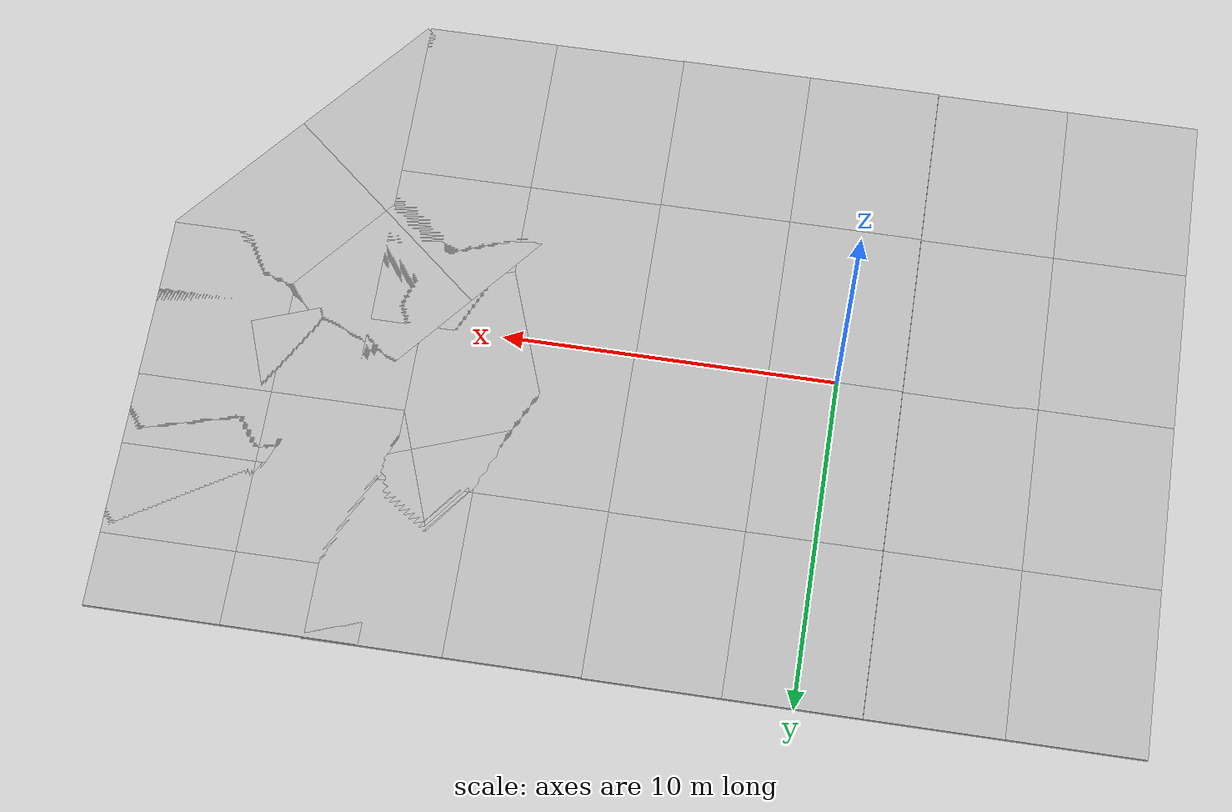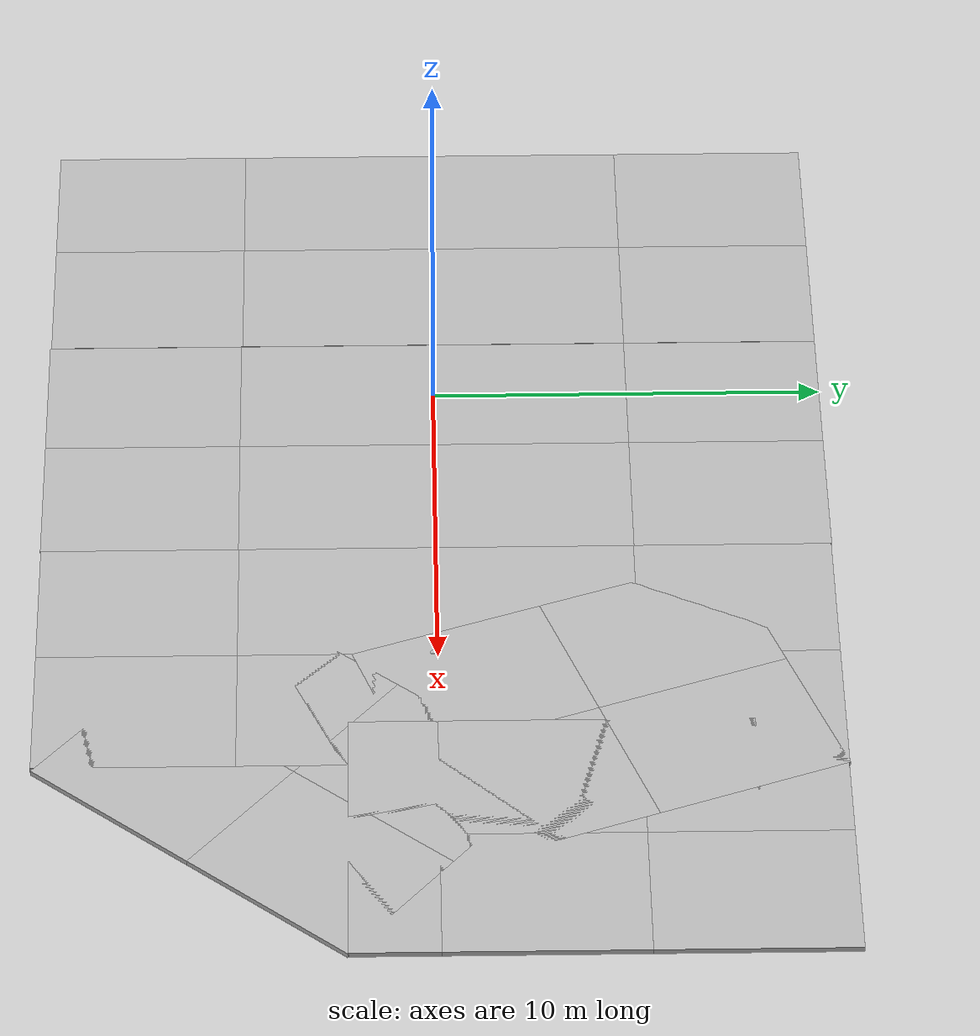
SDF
<sdf version="1.7">
 <world name="default">
  <light name="sun" type="directional">
   <pose>0 0 10 0 -0 0</pose>
   <diffuse>0.8 0.8 0.8 1</diffuse>
   <specular>0.2 0.2 0.2 1</specular>
   <attenuation>
    <range>1000</range>
    <constant>0.9</constant>
    <linear>0.01</linear>
    <quadratic>0.001</quadratic>
   </attenuation>
   <direction>-0.5 0.1 -0.9</direction>
   <spot><inner_angle>0</inner_angle><outer_angle>0</outer_angle><falloff>0</falloff></spot>
  </light>
  <model name="ground_plane">
   <static>1</static>
   <link name="link">
    <collision name="collision">
     <geometry><plane><normal>0 0 1</normal><size>100 100</size></plane></geometry>
     <surface>
      <contact><collide_bitmask>65535</collide_bitmask></contact>
      <friction><ode><mu>100</mu><mu2>50</mu2></ode></friction>
     </surface>
    </collision>
    <visual name="visual">
     <cast_shadows>0</cast_shadows>
     <geometry><plane><normal>0 0 1</normal><size>100 100</size></plane></geometry>
     <material>
      <script><uri>file://media/materials/scripts/gazebo.material</uri><name>Gazebo/Grey</name></script>
     </material>
    </visual>
   </link>
  </model>
  <gravity>0 0 -9.8</gravity>
  <magnetic_field>6e-06 2.3e-05 -4.2e-05</magnetic_field>
  <atmosphere type="adiabatic"/>
  <physics type="ode">
   <max_step_size>0.001</max_step_size>
   <real_time_factor>1</real_time_factor>
   <real_time_update_rate>1000</real_time_update_rate>
  </physics>
  <scene><ambient>0.4 0.4 0.4 1</ambient><background>0.7 0.7 0.7 1</background><shadows>1</shadows></scene>
  <spherical_coordinates>
   <surface_model>EARTH_WGS84</surface_model>
   <latitude_deg>0</latitude_deg>
   <longitude_deg>0</longitude_deg>
   <elevation>0</elevation>
   <heading_deg>0</heading_deg>
  </spherical_coordinates>
  <model name="mud_box">
   <static>1</static>
   <link name="link">
    <collision name="collision"><geometry><box><size>8 10 0.2</size></box></geometry></collision>
    <visual name="visual_1">
     <pose>-2 2.5 0 0 -0 0</pose>
     <cast_shadows>0</cast_shadows>
     <geometry><box><size>4 5 0.2</size></box></geometry>
     <material>
      <script>
       <uri>model://mud_box/materials/scripts</uri>
       <uri>model://mud_box/materials/textures</uri>
       <name>vrc/mud</name>
      </script>
     </material>
    </visual>
    <visual name="visual_2">
     <pose>2 2.5 0 0 -0 0</pose>
     <cast_shadows>0</cast_shadows>
     <geometry><box><size>4 5 0.2</size></box></geometry>
     <material>
      <script>
       <uri>model://mud_box/materials/scripts</uri>
       <uri>model://mud_box/materials/textures</uri>
       <name>vrc/mud</name>
      </script>
     </material>
    </visual>
    <visual name="visual_3">
     <pose>2 -2.5 0 0 -0 0</pose>
     <cast_shadows>0</cast_shadows>
     <geometry><box><size>4 5 0.2</size></box></geometry>
     <material>
      <script>
       <uri>model://mud_box/materials/scripts</uri>
       <uri>model://mud_box/materials/textures</uri>
       <name>vrc/mud</name>
      </script>
     </material>
    </visual>
    <visual name="visual_4">
     <pose>-2 -2.5 0 0 -0 0</pose>
     <cast_shadows>0</cast_shadows>
     <geometry><box><size>4 5 0.2</size></box></geometry>
     <material>
      <script>
       <uri>model://mud_box/materials/scripts</uri>
       <uri>model://mud_box/materials/textures</uri>
       <name>vrc/mud</name>
      </script>
     </material>
    </visual>
   </link>
   <pose>-5.95944 4.99725 0 0 -0 0</pose>
  </model>
  <model name="mud_box_0">
   <static>1</static>
   <link name="link">
    <collision name="collision"><geometry><box><size>8 10 0.2</size></box></geometry></collision>
    <visual name="visual_1">
     <pose>-2 2.5 0 0 -0 0</pose>
     <cast_shadows>0</cast_shadows>
     <geometry><box><size>4 5 0.2</size></box></geometry>
     <material>
      <script>
       <uri>model://mud_box/materials/scripts</uri>
       <uri>model://mud_box/materials/textures</uri>
       <name>vrc/mud</name>
      </script>
     </material>
    </visual>
    <visual name="visual_2">
     <pose>2 2.5 0 0 -0 0</pose>
     <cast_shadows>0</cast_shadows>
     <geometry><box><size>4 5 0.2</size></box></geometry>
     <material>
      <script>
       <uri>model://mud_box/materials/scripts</uri>
       <uri>model://mud_box/materials/textures</uri>
       <name>vrc/mud</name>
      </script>
     </material>
    </visual>
    <visual name="visual_3">
     <pose>2 -2.5 0 0 -0 0</pose>
     <cast_shadows>0</cast_shadows>
     <geometry><box><size>4 5 0.2</size></box></geometry>
     <material>
      <script>
       <uri>model://mud_box/materials/scripts</uri>
       <uri>model://mud_box/materials/textures</uri>
       <name>vrc/mud</name>
      </script>
     </material>
    </visual>
    <visual name="visual_4">
     <pose>-2 -2.5 0 0 -0 0</pose>
     <cast_shadows>0</cast_shadows>
     <geometry><box><size>4 5 0.2</size></box></geometry>
     <material>
      <script>
       <uri>model://mud_box/materials/scripts</uri>
       <uri>model://mud_box/materials/textures</uri>
       <name>vrc/mud</name>
      </script>
     </material>
    </visual>
   </link>
   <pose>-5.95945 -4.9662 0 0 -0 0</pose>
  </model>
  <model name="mud_box_1">
   <static>1</static>
   <link name="link">
    <collision name="collision"><geometry><box><size>8 10 0.2</size></box></geometry></collision>
    <visual name="visual_1">
     <pose>-2 2.5 0 0 -0 0</pose>
     <cast_shadows>0</cast_shadows>
     <geometry><box><size>4 5 0.2</size></box></geometry>
     <material>
      <script>
       <uri>model://mud_box/materials/scripts</uri>
       <uri>model://mud_box/materials/textures</uri>
       <name>vrc/mud</name>
      </script>
     </material>
    </visual>
    <visual name="visual_2">
     <pose>2 2.5 0 0 -0 0</pose>
     <cast_shadows>0</cast_shadows>
     <geometry><box><size>4 5 0.2</size></box></geometry>
     <material>
      <script>
       <uri>model://mud_box/materials/scripts</uri>
       <uri>model://mud_box/materials/textures</uri>
       <name>vrc/mud</name>
      </script>
     </material>
    </visual>
    <visual name="visual_3">
     <pose>2 -2.5 0 0 -0 0</pose>
     <cast_shadows>0</cast_shadows>
     <geometry><box><size>4 5 0.2</size></box></geometry>
     <material>
      <script>
       <uri>model://mud_box/materials/scripts</uri>
       <uri>model://mud_box/materials/textures</uri>
       <name>vrc/mud</name>
      </script>
     </material>
    </visual>
    <visual name="visual_4">
     <pose>-2 -2.5 0 0 -0 0</pose>
     <cast_shadows>0</cast_shadows>
     <geometry><box><size>4 5 0.2</size></box></geometry>
     <material>
      <script>
       <uri>model://mud_box/materials/scripts</uri>
       <uri>model://mud_box/materials/textures</uri>
       <name>vrc/mud</name>
      </script>
     </material>
    </visual>
   </link>
   <pose>2.04856 4.99724 0 0 -0 0</pose>
  </model>
  <model name="mud_box_2">
   <static>1</static>
   <link name="link">
    <collision name="collision"><geometry><box><size>8 10 0.2</size></box></geometry></collision>
    <visual name="visual_1">
     <pose>-2 2.5 0 0 -0 0</pose>
     <cast_shadows>0</cast_shadows>
     <geometry><box><size>4 5 0.2</size></box></geometry>
     <material>
      <script>
       <uri>model://mud_box/materials/scripts</uri>
       <uri>model://mud_box/materials/textures</uri>
       <name>vrc/mud</name>
      </script>
     </material>
    </visual>
    <visual name="visual_2">
     <pose>2 2.5 0 0 -0 0</pose>
     <cast_shadows>0</cast_shadows>
     <geometry><box><size>4 5 0.2</size></box></geometry>
     <material>
      <script>
       <uri>model://mud_box/materials/scripts</uri>
       <uri>model://mud_box/materials/textures</uri>
       <name>vrc/mud</name>
      </script>
     </material>
    </visual>
    <visual name="visual_3">
     <pose>2 -2.5 0 0 -0 0</pose>
     <cast_shadows>0</cast_shadows>
     <geometry><box><size>4 5 0.2</size></box></geometry>
     <material>
      <script>
       <uri>model://mud_box/materials/scripts</uri>
       <uri>model://mud_box/materials/textures</uri>
       <name>vrc/mud</name>
      </script>
     </material>
    </visual>
    <visual name="visual_4">
     <pose>-2 -2.5 0 0 -0 0</pose>
     <cast_shadows>0</cast_shadows>
     <geometry><box><size>4 5 0.2</size></box></geometry>
     <material>
      <script>
       <uri>model://mud_box/materials/scripts</uri>
       <uri>model://mud_box/materials/textures</uri>
       <name>vrc/mud</name>
      </script>
     </material>
    </visual>
   </link>
   <pose>2.04856 -4.99724 0 0 -0 0</pose>
  </model>
  <model name="mud_box_3">
   <static>1</static>
   <link name="link">
    <collision name="collision"><geometry><box><size>8 10 0.2</size></box></geometry></collision>
    <visual name="visual_1">
     <pose>-2 2.5 0 0 -0 0</pose>
     <cast_shadows>0</cast_shadows>
     <geometry><box><size>4 5 0.2</size></box></geometry>
     <material>
      <script>
       <uri>model://mud_box/materials/scripts</uri>
       <uri>model://mud_box/materials/textures</uri>
       <name>vrc/mud</name>
      </script>
     </material>
    </visual>
    <visual name="visual_2">
     <pose>2 2.5 0 0 -0 0</pose>
     <cast_shadows>0</cast_shadows>
     <geometry><box><size>4 5 0.2</size></box></geometry>
     <material>
      <script>
       <uri>model://mud_box/materials/scripts</uri>
       <uri>model://mud_box/materials/textures</uri>
       <name>vrc/mud</name>
      </script>
     </material>
    </visual>
    <visual name="visual_3">
     <pose>2 -2.5 0 0 -0 0</pose>
     <cast_shadows>0</cast_shadows>
     <geometry><box><size>4 5 0.2</size></box></geometry>
     <material>
      <script>
       <uri>model://mud_box/materials/scripts</uri>
       <uri>model://mud_box/materials/textures</uri>
       <name>vrc/mud</name>
      </script>
     </material>
    </visual>
    <visual name="visual_4">
     <pose>-2 -2.5 0 0 -0 0</pose>
     <cast_shadows>0</cast_shadows>
     <geometry><box><size>4 5 0.2</size></box></geometry>
     <material>
      <script>
       <uri>model://mud_box/materials/scripts</uri>
       <uri>model://mud_box/materials/textures</uri>
       <name>vrc/mud</name>
      </script>
     </material>
    </visual>
   </link>
   <pose>10.0428 4.98105 0 0 -0 0</pose>
  </model>
  <model name="mud_box_4">
   <static>1</static>
   <link name="link">
    <collision name="collision"><geometry><box><size>8 10 0.2</size></box></geometry></collision>
    <visual name="visual_1">
     <pose>-2 2.5 0 0 -0 0</pose>
     <cast_shadows>0</cast_shadows>
     <geometry><box><size>4 5 0.2</size></box></geometry>
     <material>
      <script>
       <uri>model://mud_box/materials/scripts</uri>
       <uri>model://mud_box/materials/textures</uri>
       <name>vrc/mud</name>
      </script>
     </material>
    </visual>
    <visual name="visual_2">
     <pose>2 2.5 0 0 -0 0</pose>
     <cast_shadows>0</cast_shadows>
     <geometry><box><size>4 5 0.2</size></box></geometry>
     <material>
      <script>
       <uri>model://mud_box/materials/scripts</uri>
       <uri>model://mud_box/materials/textures</uri>
       <name>vrc/mud</name>
      </script>
     </material>
    </visual>
    <visual name="visual_3">
     <pose>2 -2.5 0 0 -0 0</pose>
     <cast_shadows>0</cast_shadows>
     <geometry><box><size>4 5 0.2</size></box></geometry>
     <material>
      <script>
       <uri>model://mud_box/materials/scripts</uri>
       <uri>model://mud_box/materials/textures</uri>
       <name>vrc/mud</name>
      </script>
     </material>
    </visual>
    <visual name="visual_4">
     <pose>-2 -2.5 0 0 -0 0</pose>
     <cast_shadows>0</cast_shadows>
     <geometry><box><size>4 5 0.2</size></box></geometry>
     <material>
      <script>
       <uri>model://mud_box/materials/scripts</uri>
       <uri>model://mud_box/materials/textures</uri>
       <name>vrc/mud</name>
      </script>
     </material>
    </visual>
   </link>
   <pose>10.011 -4.9824 0 0 -0 0</pose>
  </model>
  <model name="mud_box_5_clone_0">
   <static>1</static>
   <link name="link">
    <collision name="collision"><geometry><box><size>8 10 0.2</size></box></geometry></collision>
    <visual name="visual_1">
     <pose>-2 2.5 0 0 -0 0</pose>
     <cast_shadows>0</cast_shadows>
     <geometry><box><size>4 5 0.2</size></box></geometry>
     <material>
      <script>
       <uri>model://mud_box/materials/scripts</uri>
       <uri>model://mud_box/materials/textures</uri>
       <name>vrc/mud</name>
      </script>
     </material>
    </visual>
    <visual name="visual_2">
     <pose>2 2.5 0 0 -0 0</pose>
     <cast_shadows>0</cast_shadows>
     <geometry><box><size>4 5 0.2</size></box></geometry>
     <material>
      <script>
       <uri>model://mud_box/materials/scripts</uri>
       <uri>model://mud_box/materials/textures</uri>
       <name>vrc/mud</name>
      </script>
     </material>
    </visual>
    <visual name="visual_3">
     <pose>2 -2.5 0 0 -0 0</pose>
     <cast_shadows>0</cast_shadows>
     <geometry><box><size>4 5 0.2</size></box></geometry>
     <material>
      <script>
       <uri>model://mud_box/materials/scripts</uri>
       <uri>model://mud_box/materials/textures</uri>
       <name>vrc/mud</name>
      </script>
     </material>
    </visual>
    <visual name="visual_4">
     <pose>-2 -2.5 0 0 -0 0</pose>
     <cast_shadows>0</cast_shadows>
     <geometry><box><size>4 5 0.2</size></box></geometry>
     <material>
      <script>
       <uri>model://mud_box/materials/scripts</uri>
       <uri>model://mud_box/materials/textures</uri>
       <name>vrc/mud</name>
      </script>
     </material>
    </visual>
   </link>
   <pose>14.2205 -3.56084 0 0 0 -0.692398</pose>
  </model>
  <model name="mud_box_5_clone">
   <static>1</static>
   <link name="link">
    <collision name="collision"><geometry><box><size>8 10 0.2</size></box></geometry></collision>
    <visual name="visual_1">
     <pose>-2 2.5 0 0 -0 0</pose>
     <cast_shadows>0</cast_shadows>
     <geometry><box><size>4 5 0.2</size></box></geometry>
     <material>
      <script>
       <uri>model://mud_box/materials/scripts</uri>
       <uri>model://mud_box/materials/textures</uri>
       <name>vrc/mud</name>
      </script>
     </material>
    </visual>
    <visual name="visual_2">
     <pose>2 2.5 0 0 -0 0</pose>
     <cast_shadows>0</cast_shadows>
     <geometry><box><size>4 5 0.2</size></box></geometry>
     <material>
      <script>
       <uri>model://mud_box/materials/scripts</uri>
       <uri>model://mud_box/materials/textures</uri>
       <name>vrc/mud</name>
      </script>
     </material>
    </visual>
    <visual name="visual_3">
     <pose>2 -2.5 0 0 -0 0</pose>
     <cast_shadows>0</cast_shadows>
     <geometry><box><size>4 5 0.2</size></box></geometry>
     <material>
      <script>
       <uri>model://mud_box/materials/scripts</uri>
       <uri>model://mud_box/materials/textures</uri>
       <name>vrc/mud</name>
      </script>
     </material>
    </visual>
    <visual name="visual_4">
     <pose>-2 -2.5 0 0 -0 0</pose>
     <cast_shadows>0</cast_shadows>
     <geometry><box><size>4 5 0.2</size></box></geometry>
     <material>
      <script>
       <uri>model://mud_box/materials/scripts</uri>
       <uri>model://mud_box/materials/textures</uri>
       <name>vrc/mud</name>
      </script>
     </material>
    </visual>
   </link>
   <pose>12.0547 3.92894 0 0 -0 0.350394</pose>
  </model>
  <model name="mud_box_6">
   <static>1</static>
   <link name="link">
    <collision name="collision"><geometry><box><size>8 10 0.2</size></box></geometry></collision>
    <visual name="visual_1">
     <pose>-2 2.5 0 0 -0 0</pose>
     <cast_shadows>0</cast_shadows>
     <geometry><box><size>4 5 0.2</size></box></geometry>
     <material>
      <script>
       <uri>model://mud_box/materials/scripts</uri>
       <uri>model://mud_box/materials/textures</uri>
       <name>vrc/mud</name>
      </script>
     </material>
    </visual>
    <visual name="visual_2">
     <pose>2 2.5 0 0 -0 0</pose>
     <cast_shadows>0</cast_shadows>
     <geometry><box><size>4 5 0.2</size></box></geometry>
     <material>
      <script>
       <uri>model://mud_box/materials/scripts</uri>
       <uri>model://mud_box/materials/textures</uri>
       <name>vrc/mud</name>
      </script>
     </material>
    </visual>
    <visual name="visual_3">
     <pose>2 -2.5 0 0 -0 0</pose>
     <cast_shadows>0</cast_shadows>
     <geometry><box><size>4 5 0.2</size></box></geometry>
     <material>
      <script>
       <uri>model://mud_box/materials/scripts</uri>
       <uri>model://mud_box/materials/textures</uri>
       <name>vrc/mud</name>
      </script>
     </material>
    </visual>
    <visual name="visual_4">
     <pose>-2 -2.5 0 0 -0 0</pose>
     <cast_shadows>0</cast_shadows>
     <geometry><box><size>4 5 0.2</size></box></geometry>
     <material>
      <script>
       <uri>model://mud_box/materials/scripts</uri>
       <uri>model://mud_box/materials/textures</uri>
       <name>vrc/mud</name>
      </script>
     </material>
    </visual>
   </link>
   <pose>16.4725 2.7536 0 0 -0 0</pose>
  </model>
  <model name="mud_box_7">
   <static>1</static>
   <link name="link">
    <collision name="collision"><geometry><box><size>8 10 0.2</size></box></geometry></collision>
    <visual name="visual_1">
     <pose>-2 2.5 0 0 -0 0</pose>
     <cast_shadows>0</cast_shadows>
     <geometry><box><size>4 5 0.2</size></box></geometry>
     <material>
      <script>
       <uri>model://mud_box/materials/scripts</uri>
       <uri>model://mud_box/materials/textures</uri>
       <name>vrc/mud</name>
      </script>
     </material>
    </visual>
    <visual name="visual_2">
     <pose>2 2.5 0 0 -0 0</pose>
     <cast_shadows>0</cast_shadows>
     <geometry><box><size>4 5 0.2</size></box></geometry>
     <material>
      <script>
       <uri>model://mud_box/materials/scripts</uri>
       <uri>model://mud_box/materials/textures</uri>
       <name>vrc/mud</name>
      </script>
     </material>
    </visual>
    <visual name="visual_3">
     <pose>2 -2.5 0 0 -0 0</pose>
     <cast_shadows>0</cast_shadows>
     <geometry><box><size>4 5 0.2</size></box></geometry>
     <material>
      <script>
       <uri>model://mud_box/materials/scripts</uri>
       <uri>model://mud_box/materials/textures</uri>
       <name>vrc/mud</name>
      </script>
     </material>
    </visual>
    <visual name="visual_4">
     <pose>-2 -2.5 0 0 -0 0</pose>
     <cast_shadows>0</cast_shadows>
     <geometry><box><size>4 5 0.2</size></box></geometry>
     <material>
      <script>
       <uri>model://mud_box/materials/scripts</uri>
       <uri>model://mud_box/materials/textures</uri>
       <name>vrc/mud</name>
      </script>
     </material>
    </visual>
   </link>
   <pose>16.4725 4.96313 0 0 -0 0</pose>
  </model>
 </world>
</sdf>
